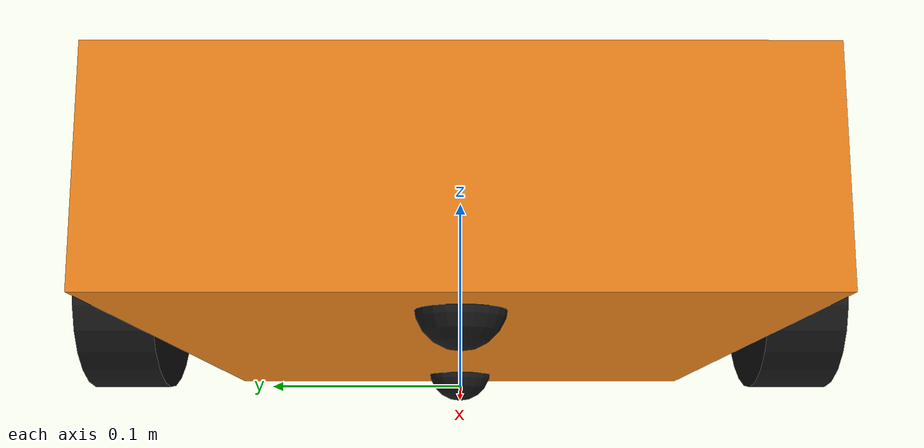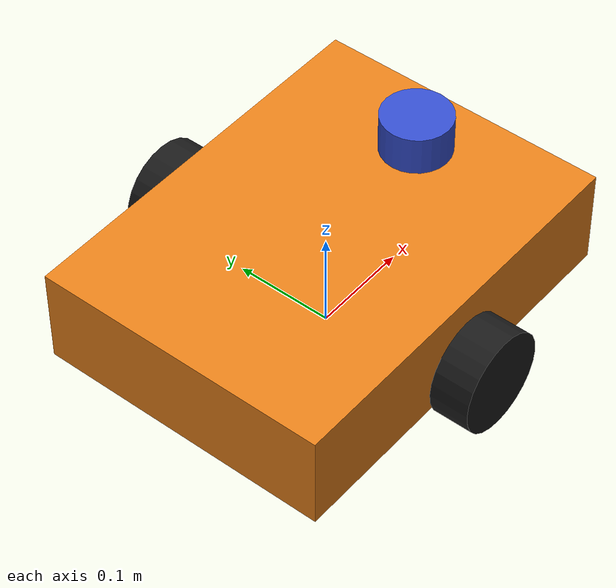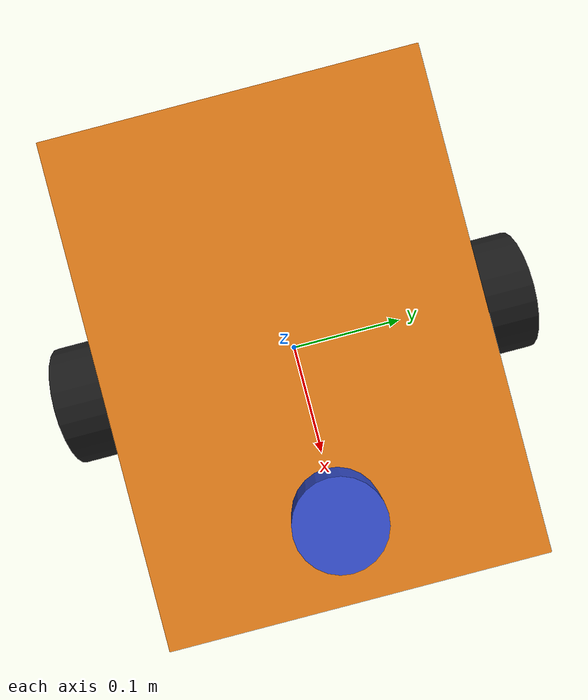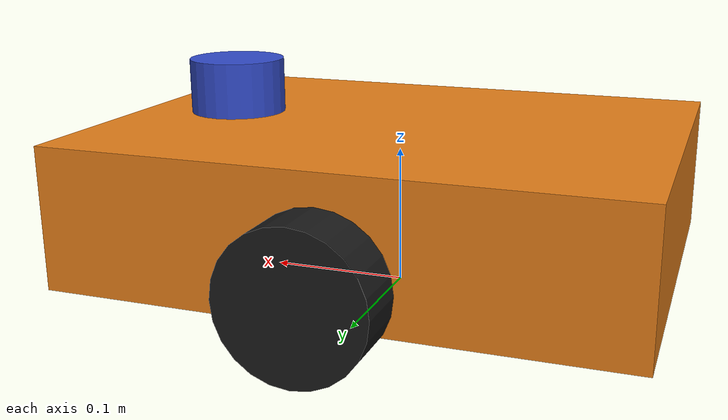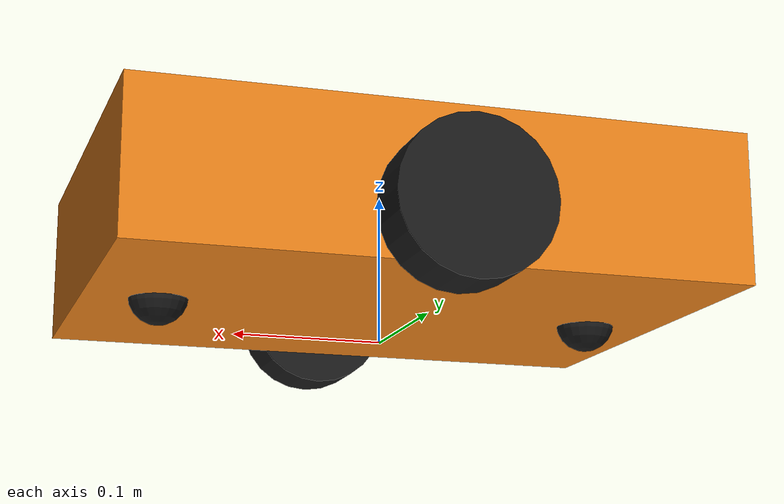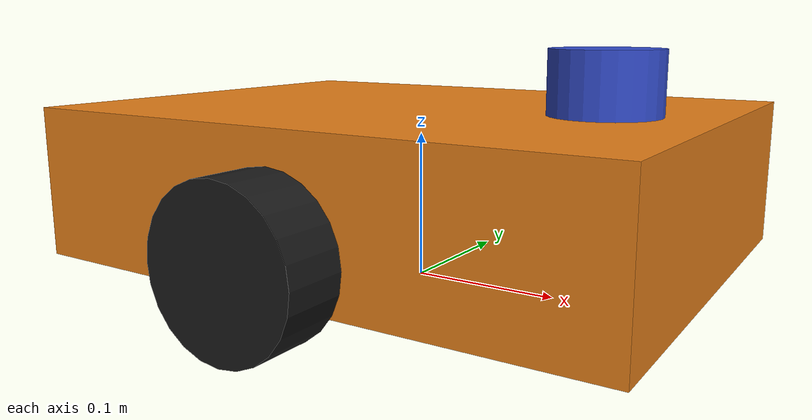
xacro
<?xml version="1.0"?>
<!-- 직접 제작 차동구동 차체 + 라이다 (DOFBOT 팔은 나중에 추가) -->
<robot name="mm_robot" xmlns:xacro="http://www.ros.org/wiki/xacro">

  <!-- ===== 치수 (단위 m, kg) : 임시값, 팔 장착하면서 조정 ===== -->
  <xacro:property name="PI" value="3.14159265"/>
  <xacro:property name="chassis_x" value="0.40"/>
  <xacro:property name="chassis_y" value="0.30"/>
  <xacro:property name="chassis_z" value="0.10"/>
  <xacro:property name="chassis_mass" value="5.0"/>
  <xacro:property name="ground_clearance" value="0.02"/>

  <xacro:property name="wheel_radius" value="0.05"/>
  <xacro:property name="wheel_width" value="0.04"/>
  <xacro:property name="wheel_mass" value="0.5"/>
  <xacro:property name="wheel_separation" value="0.35"/>

  <xacro:property name="caster_radius" value="0.02"/>
  <xacro:property name="caster_x" value="0.15"/>
  <xacro:property name="caster_gap" value="0.003"/>

  <xacro:property name="lidar_radius" value="0.035"/>
  <xacro:property name="lidar_height" value="0.04"/>
  <xacro:property name="lidar_x" value="0.13"/>

  <!-- base_link는 바퀴 축 높이(지면에서 wheel_radius)에 둔다 -->
  <xacro:property name="chassis_center_z" value="${ground_clearance + chassis_z/2 - wheel_radius}"/>

  <!-- ===== 관성 매크로 ===== -->
  <xacro:macro name="box_inertia" params="m x y z">
    <inertia ixx="${m*(y*y+z*z)/12}" ixy="0" ixz="0"
             iyy="${m*(x*x+z*z)/12}" iyz="0"
             izz="${m*(x*x+y*y)/12}"/>
  </xacro:macro>
  <xacro:macro name="cylinder_inertia" params="m r h">
    <inertia ixx="${m*(3*r*r+h*h)/12}" ixy="0" ixz="0"
             iyy="${m*(3*r*r+h*h)/12}" iyz="0"
             izz="${m*r*r/2}"/>
  </xacro:macro>
  <xacro:macro name="sphere_inertia" params="m r">
    <inertia ixx="${2*m*r*r/5}" ixy="0" ixz="0"
             iyy="${2*m*r*r/5}" iyz="0"
             izz="${2*m*r*r/5}"/>
  </xacro:macro>

  <!-- ===== 링크 ===== -->
  <link name="base_footprint"/>

  <joint name="base_joint" type="fixed">
    <parent link="base_footprint"/>
    <child link="base_link"/>
    <origin xyz="0 0 ${wheel_radius}" rpy="0 0 0"/>
  </joint>

  <link name="base_link">
    <visual>
      <origin xyz="0 0 ${chassis_center_z}"/>
      <geometry><box size="${chassis_x} ${chassis_y} ${chassis_z}"/></geometry>
      <material name="grey"><color rgba="0.9 0.5 0.1 1"/></material>
    </visual>
    <collision>
      <origin xyz="0 0 ${chassis_center_z}"/>
      <geometry><box size="${chassis_x} ${chassis_y} ${chassis_z}"/></geometry>
    </collision>
    <inertial>
      <origin xyz="0 0 ${chassis_center_z}"/>
      <mass value="${chassis_mass}"/>
      <xacro:box_inertia m="${chassis_mass}" x="${chassis_x}" y="${chassis_y}" z="${chassis_z}"/>
    </inertial>
  </link>

  <!-- 바퀴: 두 바퀴 모두 회전축이 차체 +y 방향 → 양수 회전 = 전진 -->
  <xacro:macro name="wheel" params="side y">
    <link name="${side}_wheel_link">
      <visual>
        <geometry><cylinder radius="${wheel_radius}" length="${wheel_width}"/></geometry>
        <material name="black"><color rgba="0.1 0.1 0.1 1"/></material>
      </visual>
      <collision>
        <geometry><sphere radius="${wheel_radius}"/></geometry>
      </collision>
      <inertial>
        <mass value="${wheel_mass}"/>
        <xacro:cylinder_inertia m="${wheel_mass}" r="${wheel_radius}" h="${wheel_width}"/>
      </inertial>
    </link>
    <joint name="${side}_wheel_joint" type="continuous">
      <parent link="base_link"/>
      <child link="${side}_wheel_link"/>
      <origin xyz="0 ${y} 0" rpy="${-PI/2} 0 0"/>
      <axis xyz="0 0 1"/>
    </joint>
    <gazebo reference="${side}_wheel_link">
      <mu1>1.0</mu1>
      <mu2>1.0</mu2>
    </gazebo>
  </xacro:macro>

  <xacro:wheel side="left" y="${wheel_separation/2}"/>
  <xacro:wheel side="right" y="${-wheel_separation/2}"/>

  <!-- 캐스터: 마찰 0인 구 (앞뒤) -->
  <xacro:macro name="caster" params="name x">
    <link name="${name}_caster_link">
      <visual>
        <geometry><sphere radius="${caster_radius}"/></geometry>
        <material name="black"/>
      </visual>
      <collision>
        <geometry><sphere radius="${caster_radius}"/></geometry>
      </collision>
      <inertial>
        <mass value="0.1"/>
        <xacro:sphere_inertia m="0.1" r="${caster_radius}"/>
      </inertial>
    </link>
    <joint name="${name}_caster_joint" type="fixed">
      <parent link="base_link"/>
      <child link="${name}_caster_link"/>
      <origin xyz="${x} 0 ${caster_radius - wheel_radius + caster_gap}"/>
    </joint>
    <gazebo reference="${name}_caster_link">
      <mu1>0.0</mu1>
      <mu2>0.0</mu2>
    </gazebo>
  </xacro:macro>

  <xacro:caster name="front" x="${caster_x}"/>
  <xacro:caster name="rear" x="${-caster_x}"/>

  <!-- 라이다 -->
  <link name="base_scan">
    <visual>
      <origin xyz="0 0 ${-lidar_height/2 - 0.005}"/><geometry><cylinder radius="${lidar_radius}" length="${lidar_height}"/></geometry>
      <material name="blue"><color rgba="0.2 0.3 0.8 1"/></material>
    </visual>
    <collision>
      <origin xyz="0 0 ${-lidar_height/2 - 0.005}"/><geometry><cylinder radius="${lidar_radius}" length="${lidar_height}"/></geometry>
    </collision>
    <inertial>
      <mass value="0.2"/>
      <xacro:cylinder_inertia m="0.2" r="${lidar_radius}" h="${lidar_height}"/>
    </inertial>
  </link>
  <joint name="base_scan_joint" type="fixed">
    <parent link="base_link"/>
    <child link="base_scan"/>
    <origin xyz="${lidar_x} 0 ${chassis_center_z + chassis_z/2 + lidar_height + 0.005}"/>
  </joint>

  <gazebo reference="base_scan">
    <sensor name="lidar" type="gpu_lidar">
      <always_on>1</always_on>
      <visualize>true</visualize>
      <update_rate>10</update_rate>
      <topic>scan</topic>
      <ignition_frame_id>base_scan</ignition_frame_id>
      <ray>
        <scan>
          <horizontal>
            <samples>360</samples>
            <resolution>1</resolution>
            <min_angle>-3.14159</min_angle>
            <max_angle>3.14159</max_angle>
          </horizontal>
        </scan>
        <range>
          <min>0.12</min>
          <max>8.0</max>
          <resolution>0.01</resolution>
        </range>
      </ray>
    </sensor>
  </gazebo>

  <!-- ===== Gazebo 플러그인 ===== -->
  <gazebo>
    <!-- 차동구동: /cmd_vel 받아서 바퀴 구동, /odom 과 odom→base_footprint TF 발행 -->
    <plugin filename="ignition-gazebo-diff-drive-system"
            name="ignition::gazebo::systems::DiffDrive">
      <left_joint>left_wheel_joint</left_joint>
      <right_joint>right_wheel_joint</right_joint>
      <wheel_separation>${wheel_separation}</wheel_separation>
      <wheel_radius>${wheel_radius}</wheel_radius>
      <max_linear_acceleration>1.0</max_linear_acceleration>
      <min_linear_acceleration>-1.0</min_linear_acceleration>
      <max_angular_acceleration>2.0</max_angular_acceleration>
      <min_angular_acceleration>-2.0</min_angular_acceleration>
      <topic>/cmd_vel</topic>
      <odom_topic>/odom</odom_topic>
      <tf_topic>/tf</tf_topic>
      <frame_id>odom</frame_id>
      <child_frame_id>base_footprint</child_frame_id>
      <odom_publish_frequency>30</odom_publish_frequency>
    </plugin>

    <!-- 바퀴 관절 상태 → /joint_states (브리지에서 이름 변경) -->
    <plugin filename="ignition-gazebo-joint-state-publisher-system"
            name="ignition::gazebo::systems::JointStatePublisher"/>
  </gazebo>

</robot>
